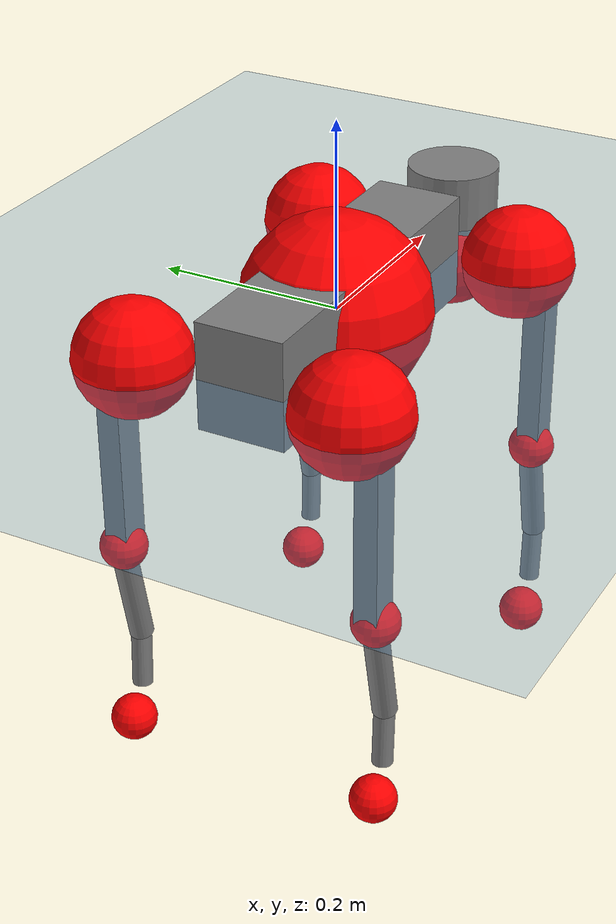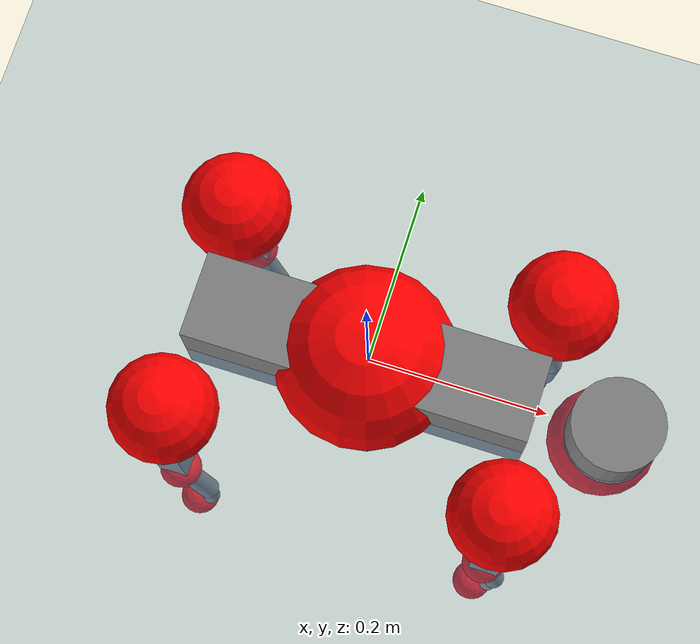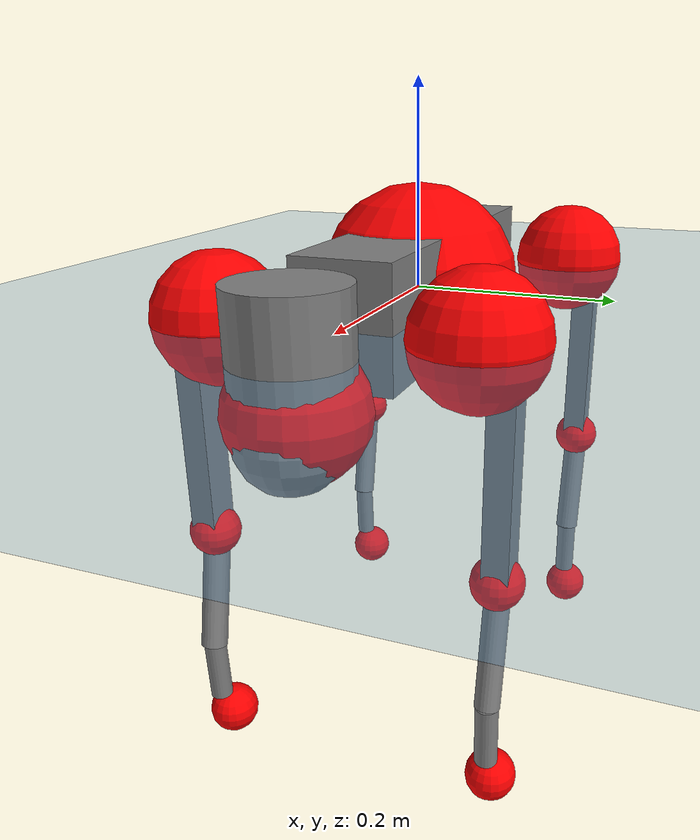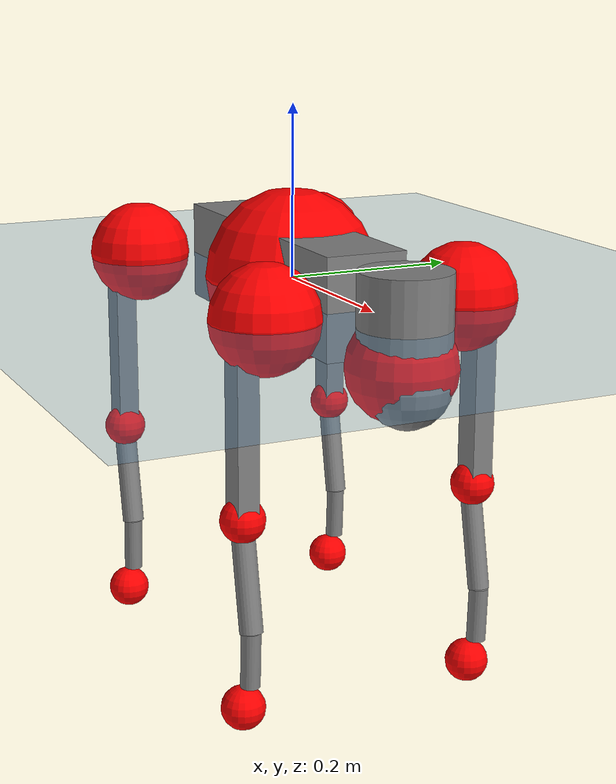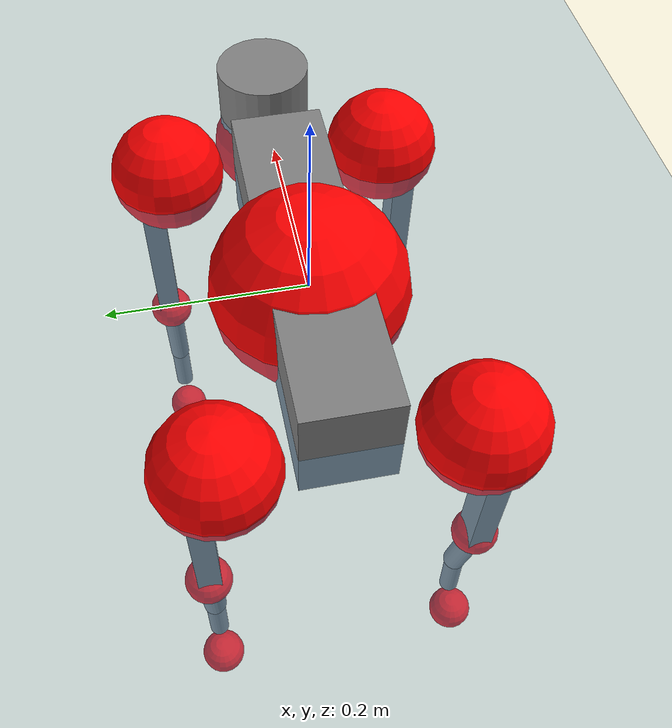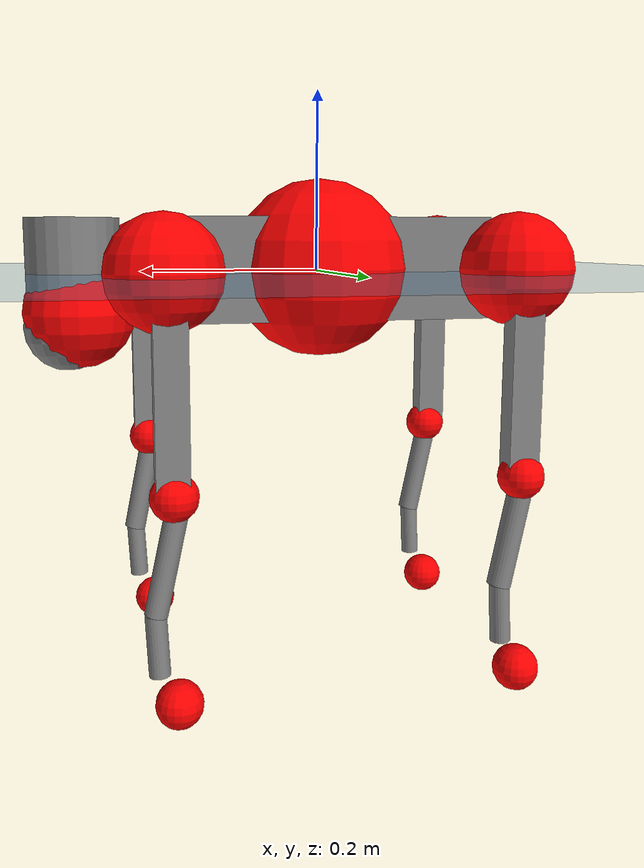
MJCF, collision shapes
<mujoco model="go2">
  <compiler angle="radian" assetdir="assets" balanceinertia="true" inertiafromgeom="false"/>

  <option timestep="0.005" density="1.2" viscosity="2e-05"/>

  <size nkey="1"/>

  <visual>
    <quality shadowsize="8192"/>
    <map shadowclip="0.5"/>
  </visual>

  <default>
    <default class="/">
      <geom contype="0" conaffinity="0" group="1" solref="-1000 -80"/>
      <site size="0.01 0.005 0.005" group="5"/>
      <general forcelimited="true" biastype="affine" gainprm="20" biasprm="0 -20 -0.5"/>
      <default class="go2">
        <joint armature="0.01" damping="0.01" frictionloss="0.2"/>
        <geom condim="1" margin="0.001"/>
        <default class="visual">
          <geom type="mesh" group="2"/>
        </default>
        <default class="collision">
          <geom group="3"/>
          <default class="foot">
            <geom size="0.022 0 0" condim="6" priority="1" friction="0.8 0.02 0.01" solimp="0.015 1 0.022"/>
          </default>
        </default>
        <default class="reward_collision_sphere">
          <geom group="5" rgba="1 0 0 1"/>
        </default>
      </default>
    </default>
  </default>

  <asset>
    <texture type="skybox" colorspace="auto" name="//unnamed_texture_0" builtin="gradient" rgb1="0.95 0.95 0.95" rgb2="0.95 0.95 0.95" width="100" height="600"/>
    <texture type="2d" colorspace="auto" name="texplane" builtin="checker" rgb1="0.345 0.575 0.748" rgb2="0.345 0.575 0.748" markrgb="1 1 1" width="512" height="512"/>
    <material name="MatPlane" class="/" texture="texplane" texuniform="true" texrepeat="2 2" specular="0.9"/>
    <material name="metal" class="/" rgba="0.9 0.95 0.95 1"/>
    <material name="black" class="/" rgba="0 0 0 1"/>
    <material name="white" class="/"/>
    <material name="gray" class="/" rgba="0.671705 0.692426 0.77427 1"/>
    <mesh name="base_0" class="/" file="base_0.obj"/>
    <mesh name="base_1" class="/" file="base_1.obj"/>
    <mesh name="base_2" class="/" file="base_2.obj"/>
    <mesh name="base_3" class="/" file="base_3.obj"/>
    <mesh name="base_4" class="/" file="base_4.obj"/>
    <mesh name="hip_0" class="/" file="hip_0.obj"/>
    <mesh name="hip_1" class="/" file="hip_1.obj"/>
    <mesh name="thigh_0" class="/" file="thigh_0.obj"/>
    <mesh name="thigh_1" class="/" file="thigh_1.obj"/>
    <mesh name="thigh_mirror_0" class="/" file="thigh_mirror_0.obj"/>
    <mesh name="thigh_mirror_1" class="/" file="thigh_mirror_1.obj"/>
    <mesh name="calf_0" class="/" file="calf_0.obj"/>
    <mesh name="calf_1" class="/" file="calf_1.obj"/>
    <mesh name="calf_mirror_0" class="/" file="calf_mirror_0.obj"/>
    <mesh name="calf_mirror_1" class="/" file="calf_mirror_1.obj"/>
    <mesh name="foot" class="/" file="foot.obj"/>
  </asset>

  <worldbody>
    <geom name="floor" class="/" size="100 100 0.125" type="plane" group="0" material="MatPlane"/>
    <light name="toplight_shadow" class="/" pos="0 0 5" dir="0.0990148 0.0990148 -0.990148" type="directional" ambient="0.04 0.04 0.04" diffuse="0.55 0.55 0.55" specular="0.12 0.12 0.12"/>
    <light name="toplight_fill" class="/" pos="0 0 5" dir="0.0990148 0.0990148 -0.990148" type="directional" castshadow="false" ambient="0.04 0.04 0.04" diffuse="0.3 0.3 0.3" specular="0.08 0.08 0.08"/>
    <body name="trunk" childclass="go2" pos="-0.00257062 -5.41583e-05 0.00260857" quat="0.999999 -0.000562288 -6.88214e-06 -0.00099743">
      <inertial pos="0.0241363 0.00107972 -0.00807847" quat="-0.0034955 0.710943 -0.0129332 0.703122" mass="6.88981" diaginertia="0.0887995 0.114017 0.0298005"/>
      <joint name="//unnamed_joint_0" type="free" armature="0" damping="0" frictionloss="0"/>
      <geom name="//unnamed_geom_1" class="visual" material="black" mesh="base_0"/>
      <geom name="//unnamed_geom_2" class="visual" material="black" mesh="base_1"/>
      <geom name="//unnamed_geom_3" class="visual" material="black" mesh="base_2"/>
      <geom name="//unnamed_geom_4" class="visual" material="white" mesh="base_3"/>
      <geom name="//unnamed_geom_5" class="visual" material="gray" mesh="base_4"/>
      <geom name="trunk_1" class="collision" size="0.189675 0.0471415 0.0574774" type="box"/>
      <geom name="trunk_2" class="collision" size="0.0504187 0.0453769" pos="0.274618 0 0.0103391" type="cylinder"/>
      <geom name="trunk_3" class="collision" size="0.0473936" pos="0.282327 0 -0.0620348"/>
      <geom name="//unnamed_geom_9" class="reward_collision_sphere" size="0.100837"/>
      <geom name="//unnamed_geom_10" class="reward_collision_sphere" size="0.0605025" pos="0.2698 0 -0.0465261"/>
      <site name="imu" pos="-0.0355321 -0.000231347 0.0544119" size="0.0100837"/>
      <camera name="track" pos="0 -2.05528 0" quat="0.707107 0.707107 0 0" mode="trackcom"/>
      <camera name="ego_camera" pos="0.300634 0 0.0465261" quat="-0.5 -0.5 0.5 0.5"/>
      <body name="FL_hip" pos="0.186198 0.0483834 0.000207646" quat="1 0.000380549 -0.000669107 0.000270208">
        <inertial pos="-0.00500666 0.00194058 -0.000489947" quat="0.497977 0.5002 0.503788 0.498013" mass="0.746574" diaginertia="0.000761278 0.00072062 0.000596164"/>
        <joint name="FL_hip_joint" pos="0 0 0" axis="0.999931 -0.0114722 -0.00264731" range="-1.04621 1.09615" armature="0.00991776" damping="0.0154573" frictionloss="0.192879"/>
        <geom name="//unnamed_geom_11" class="visual" material="metal" mesh="hip_0"/>
        <geom name="//unnamed_geom_12" class="visual" material="gray" mesh="hip_1"/>
        <geom name="//unnamed_geom_13" class="collision" size="0.0463852 0.0201675" pos="0 0.0822112 0" quat="0.707107 0.707107 0 0" type="cylinder"/>
        <geom name="//unnamed_geom_14" class="reward_collision_sphere" size="0.0605025" pos="0 0.0719348 0"/>
        <body name="FL_thigh" pos="-0.0019119 0.0952865 0.00143486" quat="1 8.8589e-06 -0.000888237 -0.000158802">
          <inertial pos="-0.00402809 -0.0229647 -0.0320613" quat="0.829629 0.0853327 -0.01973 0.551402" mass="1.16163" diaginertia="0.00486967 0.0069037 0.00106254"/>
          <joint name="FL_thigh_joint" pos="0 0 0" axis="-0.00241143 0.999943 0.0104163" range="-1.59757 3.50935" armature="0.00879309" damping="0.00706516" frictionloss="0.185367"/>
          <geom name="//unnamed_geom_15" class="visual" material="metal" mesh="thigh_0"/>
          <geom name="//unnamed_geom_16" class="visual" material="gray" mesh="thigh_1"/>
          <geom name="//unnamed_geom_17" class="collision" size="0.107392 0.0123526 0.0171424" pos="0 0 -0.110112" quat="0.707107 0 0.707107 0" type="box"/>
          <body name="FL_calf" pos="-0.00173474 -0.0015668 -0.221889" quat="0.999999 0.000669287 -0.000532195 -0.000772484">
            <inertial pos="0.00690991 0.00183304 -0.147996" quat="0.707981 0.00323938 -0.00453784 0.706209" mass="0.238856" diaginertia="0.00121711 0.00165329 6.29468e-05"/>
            <joint name="FL_calf_joint" pos="0 0 0" axis="0.00111303 0.999999 -0.000196477" stiffness="0.00581137" range="-2.70267 -0.855648" armature="0.0113073" damping="0.00531107" frictionloss="0.192811"/>
            <geom name="//unnamed_geom_18" class="visual" material="gray" mesh="calf_0"/>
            <geom name="//unnamed_geom_19" class="visual" material="black" mesh="calf_1"/>
            <geom name="FL_calf0" class="collision" size="0.0121005 0.0605025" pos="0.00770857 0 -0.0620348" quat="0.994493 0 -0.104807 0" type="cylinder"/>
            <geom name="//unnamed_geom_21" class="collision" size="0.0110921 0.0327722" pos="0.0192714 0 -0.153019" quat="0.999688 0 0.0249974 0" type="cylinder"/>
            <geom name="//unnamed_geom_22" class="visual" pos="0 0 -0.220223" quat="1 0 0 0" material="black" mesh="foot"/>
            <geom name="FL_foot" class="foot" size="0.0188982" pos="-0.00192714 0 -0.220223"/>
            <geom name="//unnamed_geom_24" class="reward_collision_sphere" size="0.0252094"/>
            <geom name="//unnamed_geom_25" class="reward_collision_sphere" size="0.0252094" pos="-0.00192714 0 -0.220223"/>
            <site name="FL_foot" class="foot" pos="-0.00192714 0 -0.220223" size="0.0100837"/>
          </body>
        </body>
      </body>
      <body name="FR_hip" pos="0.188827 -0.0456326 -0.00206111" quat="1 -0.000311859 -0.00011208 0.000555255">
        <inertial pos="-0.0063459 0.00220197 -0.00125587" quat="0.49248 0.518766 0.493311 0.494964" mass="0.707481" diaginertia="0.00075538 0.000681903 0.000580149"/>
        <joint name="FR_hip_joint" pos="0 0 0" axis="0.999994 0.00106587 -0.00332806" stiffness="0.0130433" range="-1.00789 1.06774" armature="0.0094802" damping="0.0106592" frictionloss="0.227643"/>
        <geom name="//unnamed_geom_26" class="visual" pos="0 -5.46484e-11 -2.34398e-09" quat="4.63268e-05 1 0 0" material="metal" mesh="hip_0"/>
        <geom name="//unnamed_geom_27" class="visual" pos="0 -8.85915e-11 5.79756e-09" quat="4.63268e-05 1 0 0" material="gray" mesh="hip_1"/>
        <geom name="//unnamed_geom_28" class="collision" size="0.0463852 0.0201675" pos="0 -0.0822112 0" quat="0.707107 0.707107 0 0" type="cylinder"/>
        <geom name="//unnamed_geom_29" class="reward_collision_sphere" size="0.0605025" pos="0 -0.0719348 0"/>
        <body name="FR_thigh" pos="0.00179272 -0.0994163 0.00176858" quat="1 -4.499e-05 -0.000360417 0.0003835">
          <inertial pos="-0.00609359 0.0204268 -0.0353343" quat="0.54838 -0.0156963 0.0893902 0.831289" mass="1.14581" diaginertia="0.00473728 0.00657277 0.000981738"/>
          <joint name="FR_thigh_joint" pos="0 0 0" axis="-0.00704981 -0.999952 0.00683297" stiffness="0.00123175" range="-3.43908 1.52123" armature="0.00961168" damping="0.0110558" frictionloss="0.226096"/>
          <geom name="//unnamed_geom_30" class="visual" material="metal" mesh="thigh_mirror_0"/>
          <geom name="//unnamed_geom_31" class="visual" material="gray" mesh="thigh_mirror_1"/>
          <geom name="//unnamed_geom_32" class="collision" size="0.107392 0.0123526 0.0171424" pos="0 0 -0.110112" quat="0.707107 0 0.707107 0" type="box"/>
          <body name="FR_calf" pos="-0.00180775 0.000591772 -0.218678" quat="1 -0.000107883 0.000165102 -0.000739061">
            <inertial pos="0.0060742 0.000691604 -0.146088" quat="0.696591 -0.00249978 0.0128771 0.717349" mass="0.251489" diaginertia="0.00127223 0.00162611 6.21525e-05"/>
            <joint name="FR_calf_joint" pos="0 0 0" axis="-0.00296628 -0.999989 0.00368527" stiffness="0.0098464" range="0.886081 2.69162" armature="0.00989196" damping="0" frictionloss="0.224723"/>
            <geom name="//unnamed_geom_33" class="visual" material="gray" mesh="calf_mirror_0"/>
            <geom name="//unnamed_geom_34" class="visual" material="black" mesh="calf_mirror_1"/>
            <geom name="FR_calf0" class="collision" size="0.0131089 0.0605025" pos="0.00963572 0 -0.0620348" quat="0.995004 0 -0.0998334 0" type="cylinder"/>
            <geom name="//unnamed_geom_36" class="collision" size="0.0110921 0.0327722" pos="0.0192714 0 -0.153019" quat="0.999688 0 0.0249974 0" type="cylinder"/>
            <geom name="//unnamed_geom_37" class="visual" pos="0 0 -0.220223" quat="1 0 0 0" material="black" mesh="foot"/>
            <geom name="FR_foot" class="foot" size="0.0230089" pos="-0.00192714 0 -0.220223"/>
            <geom name="//unnamed_geom_39" class="reward_collision_sphere" size="0.0252094"/>
            <geom name="//unnamed_geom_40" class="reward_collision_sphere" size="0.0252094" pos="-0.00192714 0 -0.220223"/>
            <site name="FR_foot" class="foot" pos="-0.00192714 0 -0.220223" size="0.0100837"/>
          </body>
        </body>
      </body>
      <body name="RL_hip" pos="-0.187714 0.0468806 0.00167727" quat="1 -9.30321e-06 0.000264701 -0.000261624">
        <inertial pos="0.00470732 0.00296435 0.00377367" quat="0.506597 0.498607 0.496732 0.498003" mass="0.672759" diaginertia="0.000674597 0.000641759 0.000536895"/>
        <joint name="RL_hip_joint" pos="0 0 0" axis="-0.999985 -0.00233507 0.00485999" range="-1.02928 1.09677" armature="0.00952154" damping="0.0199138" frictionloss="0.200284"/>
        <geom name="//unnamed_geom_41" class="visual" pos="6.12781e-10 0 1.20119e-07" quat="4.63268e-05 0 1 0" material="metal" mesh="hip_0"/>
        <geom name="//unnamed_geom_42" class="visual" pos="9.93392e-10 0 1.06529e-07" quat="4.63268e-05 0 1 0" material="gray" mesh="hip_1"/>
        <geom name="//unnamed_geom_43" class="collision" size="0.0463852 0.0201675" pos="0 0.0822112 0" quat="0.707107 0.707107 0 0" type="cylinder"/>
        <geom name="//unnamed_geom_44" class="reward_collision_sphere" size="0.0605025" pos="0 0.0719348 0"/>
        <body name="RL_thigh" pos="0.000172816 0.0949707 0.00105032" quat="0.999999 0.000682898 0.000385707 0.000984459">
          <inertial pos="0.000276233 -0.0200584 -0.0310474" quat="0.830077 0.0888727 -0.0192664 0.550185" mass="1.13668" diaginertia="0.00511417 0.00669626 0.00106376"/>
          <joint name="RL_thigh_joint" pos="0 0 0" axis="0.000564089 0.99984 -0.017858" range="-0.561862 4.52023" armature="0.011238" damping="0.00833878" frictionloss="0.198141"/>
          <geom name="//unnamed_geom_45" class="visual" material="metal" mesh="thigh_0"/>
          <geom name="//unnamed_geom_46" class="visual" material="gray" mesh="thigh_1"/>
          <geom name="//unnamed_geom_47" class="collision" size="0.107392 0.0123526 0.0171424" pos="0 0 -0.110112" quat="0.707107 0 0.707107 0" type="box"/>
          <body name="RL_calf" pos="-0.00196944 0.00110407 -0.222904" quat="1 8.43681e-06 8.26455e-06 -3.82645e-05">
            <inertial pos="0.00793987 -0.00209687 -0.148926" quat="0.707301 -0.00127378 -0.00222358 0.706908" mass="0.233854" diaginertia="0.00116385 0.00157003 6.16131e-05"/>
            <joint name="RL_calf_joint" pos="0 0 0" axis="0.0068427 0.999953 -0.00683188" stiffness="0.00919197" range="-2.74524 -0.848261" armature="0.0089462" damping="0" frictionloss="0.208648"/>
            <geom name="//unnamed_geom_48" class="visual" material="gray" mesh="calf_0"/>
            <geom name="//unnamed_geom_49" class="visual" material="black" mesh="calf_1"/>
            <geom name="RL_calf0" class="collision" size="0.0131089 0.0605025" pos="0.00963572 0 -0.0620348" quat="0.995004 0 -0.0998334 0" type="cylinder"/>
            <geom name="//unnamed_geom_51" class="collision" size="0.0110921 0.0327722" pos="0.0192714 0 -0.153019" quat="0.999688 0 0.0249974 0" type="cylinder"/>
            <geom name="//unnamed_geom_52" class="visual" pos="0 0 -0.220223" quat="1 0 0 0" material="black" mesh="foot"/>
            <geom name="RL_foot" class="foot" size="0.0206992" pos="-0.00192714 0 -0.220223"/>
            <geom name="//unnamed_geom_54" class="reward_collision_sphere" size="0.0252094"/>
            <geom name="//unnamed_geom_55" class="reward_collision_sphere" size="0.0252094" pos="-0.00192714 0 -0.220223"/>
            <site name="RL_foot" class="foot" pos="-0.00192714 0 -0.220223" size="0.0100837"/>
          </body>
        </body>
      </body>
      <body name="RR_hip" pos="-0.190205 -0.0469097 0.00281875" quat="1 -0.00013643 -0.000469367 0.000822588">
        <inertial pos="0.00378644 -0.000134966 0.00249068" quat="0.505607 0.484978 0.511765 0.497247" mass="0.719854" diaginertia="0.000768108 0.000705521 0.00058977"/>
        <joint name="RR_hip_joint" pos="0 0 0" axis="-0.999949 -0.00360897 0.00940318" range="-1.01606 1.08635" armature="0.00879049" damping="0.000927941" frictionloss="0.20436"/>
        <geom name="//unnamed_geom_56" class="visual" pos="-6.10563e-10 -5.46484e-11 1.22463e-07" quat="2.14617e-09 4.63268e-05 4.63268e-05 -1" material="metal" mesh="hip_0"/>
        <geom name="//unnamed_geom_57" class="visual" pos="-9.98878e-10 -8.85915e-11 1.00731e-07" quat="2.14617e-09 4.63268e-05 4.63268e-05 -1" material="gray" mesh="hip_1"/>
        <geom name="//unnamed_geom_58" class="collision" size="0.0463852 0.0201675" pos="0 -0.0822112 0" quat="0.707107 0.707107 0 0" type="cylinder"/>
        <geom name="//unnamed_geom_59" class="reward_collision_sphere" size="0.0605025" pos="0 -0.0719348 0"/>
        <body name="RR_thigh" pos="-0.00289401 -0.0964171 0.00203409" quat="1 -0.000464686 0.000371177 -0.000147818">
          <inertial pos="-0.00413983 0.0244829 -0.031273" quat="0.551584 -0.0201548 0.0846455 0.829569" mass="1.16191" diaginertia="0.00486597 0.0065397 0.00100371"/>
          <joint name="RR_thigh_joint" pos="0 0 0" axis="0.00346818 -0.999948 0.00961602" range="-4.50868 0.470818" armature="0.0090524" damping="0.0186111" frictionloss="0.207922"/>
          <geom name="//unnamed_geom_60" class="visual" material="metal" mesh="thigh_mirror_0"/>
          <geom name="//unnamed_geom_61" class="visual" material="gray" mesh="thigh_mirror_1"/>
          <geom name="//unnamed_geom_62" class="collision" size="0.107392 0.0123526 0.0171424" pos="0 0 -0.110112" quat="0.707107 0 0.707107 0" type="box"/>
          <body name="RR_calf" pos="0.00335915 -0.00147542 -0.223408" quat="0.999999 -0.000251707 -0.00111618 -2.67846e-05">
            <inertial pos="0.00549627 -0.00152908 -0.143759" quat="0.70341 -0.00455364 0.00169035 0.710768" mass="0.241898" diaginertia="0.00121665 0.00167473 6.11502e-05"/>
            <joint name="RR_calf_joint" pos="0 0 0" axis="-0.000567414 -0.999925 -0.0122261" stiffness="0.0076427" range="0.832872 2.68806" armature="0.0101971" damping="0" frictionloss="0.224842"/>
            <geom name="//unnamed_geom_63" class="visual" material="gray" mesh="calf_mirror_0"/>
            <geom name="//unnamed_geom_64" class="visual" material="black" mesh="calf_mirror_1"/>
            <geom name="RR_calf0" class="collision" size="0.0131089 0.0605025" pos="0.00963572 0 -0.0620348" quat="0.995004 0 -0.0998334 0" type="cylinder"/>
            <geom name="//unnamed_geom_66" class="collision" size="0.0110921 0.0327722" pos="0.0192714 0 -0.153019" quat="0.999688 0 0.0249974 0" type="cylinder"/>
            <geom name="//unnamed_geom_67" class="visual" pos="0 0 -0.220223" quat="1 0 0 0" material="black" mesh="foot"/>
            <geom name="RR_foot" class="foot" size="0.0219267" pos="-0.00192714 0 -0.220223"/>
            <geom name="//unnamed_geom_69" class="reward_collision_sphere" size="0.0252094"/>
            <geom name="//unnamed_geom_70" class="reward_collision_sphere" size="0.0252094" pos="-0.00192714 0 -0.220223"/>
            <site name="RR_foot" class="foot" pos="-0.00192714 0 -0.220223" size="0.0100837"/>
          </body>
        </body>
      </body>
    </body>
  </worldbody>

  <contact>
    <pair class="/" geom1="floor" geom2="FL_foot" name="//unnamed_contact_0"/>
    <pair class="/" geom1="floor" geom2="FR_foot" name="//unnamed_contact_1"/>
    <pair class="/" geom1="floor" geom2="RL_foot" name="//unnamed_contact_2"/>
    <pair class="/" geom1="floor" geom2="RR_foot" name="//unnamed_contact_3"/>
  </contact>

  <actuator>
    <general name="FL_hip" class="/" joint="FL_hip_joint" forcerange="-24.022 24.022" gainprm="19.4046" biasprm="0 -19.4046 -0.483579"/>
    <general name="FL_thigh" class="/" joint="FL_thigh_joint" forcerange="-26.2746 26.2746" gainprm="19.4046" biasprm="0 -19.4046 -0.483579"/>
    <general name="FL_calf" class="/" joint="FL_calf_joint" forcerange="-41.2387 41.2387" gainprm="19.4046" biasprm="0 -19.4046 -0.483579"/>
    <general name="FR_hip" class="/" joint="FR_hip_joint" forcerange="-23.2299 23.2299" gainprm="19.4046" biasprm="0 -19.4046 -0.483579"/>
    <general name="FR_thigh" class="/" joint="FR_thigh_joint" forcerange="-24.3729 24.3729" gainprm="19.4046" biasprm="0 -19.4046 -0.483579"/>
    <general name="FR_calf" class="/" joint="FR_calf_joint" forcerange="-41.773 41.773" gainprm="19.4046" biasprm="0 -19.4046 -0.483579"/>
    <general name="RL_hip" class="/" joint="RL_hip_joint" forcerange="-24.4839 24.4839" gainprm="19.4046" biasprm="0 -19.4046 -0.483579"/>
    <general name="RL_thigh" class="/" joint="RL_thigh_joint" forcerange="-23.6639 23.6639" gainprm="19.4046" biasprm="0 -19.4046 -0.483579"/>
    <general name="RL_calf" class="/" joint="RL_calf_joint" forcerange="-50.1443 50.1443" gainprm="19.4046" biasprm="0 -19.4046 -0.483579"/>
    <general name="RR_hip" class="/" joint="RR_hip_joint" forcerange="-22.4898 22.4898" gainprm="19.4046" biasprm="0 -19.4046 -0.483579"/>
    <general name="RR_thigh" class="/" joint="RR_thigh_joint" forcerange="-22.8812 22.8812" gainprm="19.4046" biasprm="0 -19.4046 -0.483579"/>
    <general name="RR_calf" class="/" joint="RR_calf_joint" forcerange="-50.5026 50.5026" gainprm="19.4046" biasprm="0 -19.4046 -0.483579"/>
  </actuator>

  <sensor>
    <gyro site="imu" name="imu_angular_velocity"/>
    <velocimeter site="imu" name="imu_linear_velocity"/>
    <framelinvel objtype="site" objname="FL_foot" name="FL_foot_global_linear_velocity"/>
    <framelinvel objtype="site" objname="FR_foot" name="FR_foot_global_linear_velocity"/>
    <framelinvel objtype="site" objname="RL_foot" name="RL_foot_global_linear_velocity"/>
    <framelinvel objtype="site" objname="RR_foot" name="RR_foot_global_linear_velocity"/>
  </sensor>

  <keyframe>
    <key name="home" qpos="0 0 0.325 1 0 0 0 0.1 0.8 -1.5 -0.1 -0.8 1.5 -0.1 0.8 -1.5 0.1 -0.8 1.5"/>
  </keyframe>
</mujoco>
